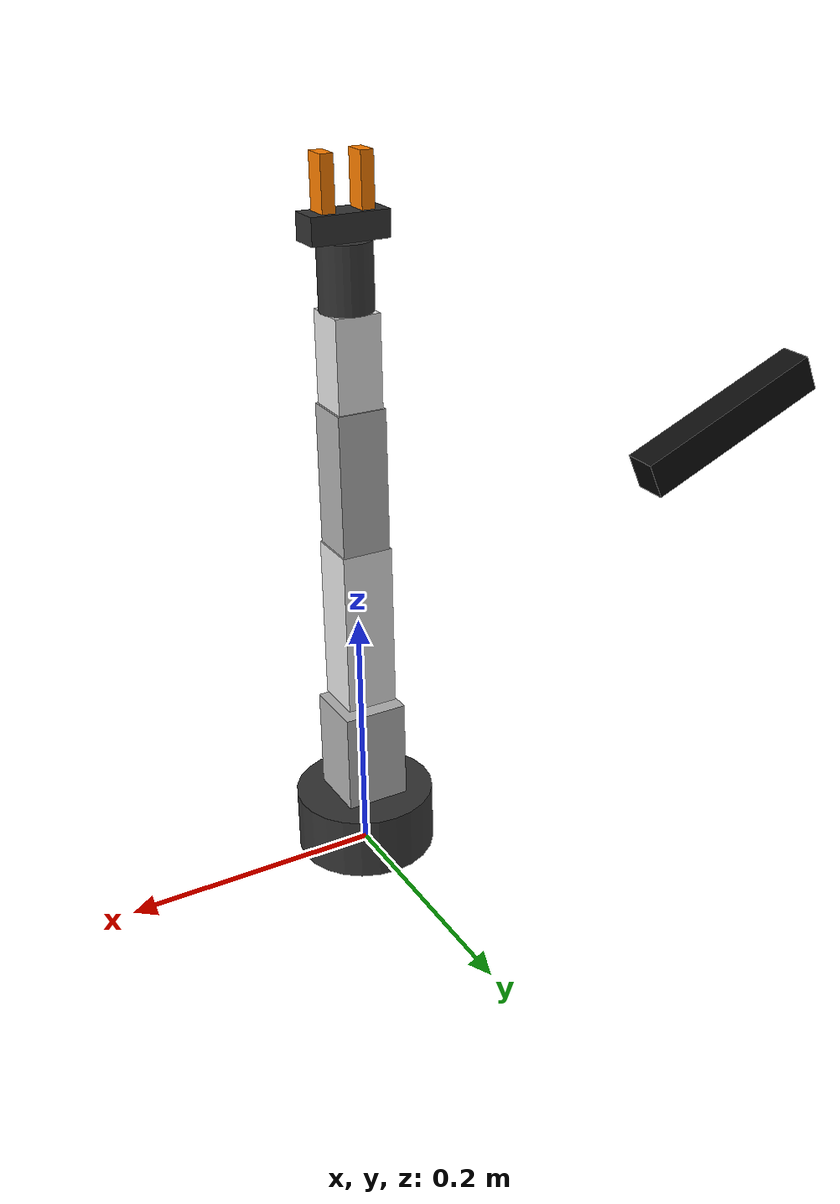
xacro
<?xml version="1.0"?>
<robot xmlns:xacro="http://www.ros.org/wiki/xacro" name="so_arm100">

  <xacro:property name="pi" value="3.14159265"/>

  <!-- Gazebo / ros2_control plugin -->
  <xacro:include filename="$(find so_arm100_description)/urdf/so_arm100.gazebo.xacro"/>
  <xacro:include filename="$(find so_arm100_description)/urdf/so_arm100.ros2_control.xacro"/>

  <!-- ───────── Materials ───────── -->
  <material name="dark_grey">
    <color rgba="0.2 0.2 0.2 1.0"/>
  </material>
  <material name="light_grey">
    <color rgba="0.7 0.7 0.7 1.0"/>
  </material>
  <material name="white">
    <color rgba="0.9 0.9 0.9 1.0"/>
  </material>
  <material name="black">
    <color rgba="0.05 0.05 0.05 1.0"/>
  </material>
  <material name="orange">
    <color rgba="1.0 0.5 0.0 1.0"/>
  </material>

  <!-- ───────── Macro: box inertia ───────── -->
  <xacro:macro name="box_inertia" params="m x y z">
    <inertial>
      <mass value="${m}"/>
      <inertia ixx="${m*(y*y+z*z)/12}" ixy="0" ixz="0"
               iyy="${m*(x*x+z*z)/12}" iyz="0"
               izz="${m*(x*x+y*y)/12}"/>
    </inertial>
  </xacro:macro>

  <!-- ───────── World / base_footprint ───────── -->
  <link name="world"/>

  <joint name="world_to_base" type="fixed">
    <parent link="world"/>
    <child  link="base_link"/>
    <origin xyz="0 0 0" rpy="0 0 0"/>
  </joint>

  <!-- ───────── Base link ───────── -->
  <link name="base_link">
    <visual>
      <origin xyz="0 0 0.025" rpy="0 0 0"/>
      <geometry><cylinder radius="0.055" length="0.05"/></geometry>
      <material name="dark_grey"/>
    </visual>
    <collision>
      <origin xyz="0 0 0.025" rpy="0 0 0"/>
      <geometry><cylinder radius="0.055" length="0.05"/></geometry>
    </collision>
    <xacro:box_inertia m="0.5" x="0.11" y="0.11" z="0.05"/>
  </link>

  <!-- ───────── Joint 1: Base rotation (yaw) ───────── -->
  <joint name="joint1" type="revolute">
    <parent link="base_link"/>
    <child  link="link1"/>
    <origin xyz="0 0 0.05" rpy="0 0 0"/>
    <axis xyz="0 0 1"/>
    <limit lower="${-pi}" upper="${pi}" effort="10" velocity="2.0"/>
    <dynamics damping="0.1" friction="0.05"/>
  </joint>

  <link name="link1">
    <visual>
      <origin xyz="0 0 0.04" rpy="0 0 0"/>
      <geometry><box size="0.05 0.05 0.08"/></geometry>
      <material name="light_grey"/>
    </visual>
    <collision>
      <origin xyz="0 0 0.04" rpy="0 0 0"/>
      <geometry><box size="0.05 0.05 0.08"/></geometry>
    </collision>
    <xacro:box_inertia m="0.2" x="0.05" y="0.05" z="0.08"/>
  </link>

  <!-- ───────── Joint 2: Shoulder pitch ───────── -->
  <joint name="joint2" type="revolute">
    <parent link="link1"/>
    <child  link="link2"/>
    <origin xyz="0 0 0.085" rpy="0 0 0"/>
    <axis xyz="0 1 0"/>
    <limit lower="${-pi/2}" upper="${pi/2}" effort="10" velocity="2.0"/>
    <dynamics damping="0.1" friction="0.05"/>
  </joint>

  <link name="link2">
    <visual>
      <origin xyz="0 0 0.065" rpy="0 0 0"/>
      <geometry><box size="0.04 0.04 0.13"/></geometry>
      <material name="white"/>
    </visual>
    <collision>
      <origin xyz="0 0 0.065" rpy="0 0 0"/>
      <geometry><box size="0.04 0.04 0.13"/></geometry>
    </collision>
    <xacro:box_inertia m="0.18" x="0.04" y="0.04" z="0.13"/>
  </link>

  <!-- ───────── Joint 3: Elbow pitch ───────── -->
  <joint name="joint3" type="revolute">
    <parent link="link2"/>
    <child  link="link3"/>
    <origin xyz="0 0 0.13" rpy="0 0 0"/>
    <axis xyz="0 1 0"/>
    <limit lower="${-pi*2/3}" upper="${pi*2/3}" effort="8" velocity="2.0"/>
    <dynamics damping="0.1" friction="0.05"/>
  </joint>

  <link name="link3">
    <visual>
      <origin xyz="0 0 0.055" rpy="0 0 0"/>
      <geometry><box size="0.038 0.038 0.11"/></geometry>
      <material name="light_grey"/>
    </visual>
    <collision>
      <origin xyz="0 0 0.055" rpy="0 0 0"/>
      <geometry><box size="0.038 0.038 0.11"/></geometry>
    </collision>
    <xacro:box_inertia m="0.14" x="0.038" y="0.038" z="0.11"/>
  </link>

  <!-- ───────── Joint 4: Wrist pitch ───────── -->
  <joint name="joint4" type="revolute">
    <parent link="link3"/>
    <child  link="link4"/>
    <origin xyz="0 0 0.11" rpy="0 0 0"/>
    <axis xyz="0 1 0"/>
    <limit lower="${-pi/2}" upper="${pi/2}" effort="5" velocity="3.0"/>
    <dynamics damping="0.05" friction="0.02"/>
  </joint>

  <link name="link4">
    <visual>
      <origin xyz="0 0 0.035" rpy="0 0 0"/>
      <geometry><box size="0.035 0.035 0.07"/></geometry>
      <material name="white"/>
    </visual>
    <collision>
      <origin xyz="0 0 0.035" rpy="0 0 0"/>
      <geometry><box size="0.035 0.035 0.07"/></geometry>
    </collision>
    <xacro:box_inertia m="0.10" x="0.035" y="0.035" z="0.07"/>
  </link>

  <!-- ───────── Joint 5: Wrist roll ───────── -->
  <joint name="joint5" type="revolute">
    <parent link="link4"/>
    <child  link="link5"/>
    <origin xyz="0 0 0.07" rpy="0 0 0"/>
    <axis xyz="0 0 1"/>
    <limit lower="${-pi}" upper="${pi}" effort="5" velocity="3.0"/>
    <dynamics damping="0.05" friction="0.02"/>
  </joint>

  <link name="link5">
    <visual>
      <origin xyz="0 0 0.025" rpy="0 0 0"/>
      <geometry><cylinder radius="0.020" length="0.05"/></geometry>
      <material name="dark_grey"/>
    </visual>
    <collision>
      <origin xyz="0 0 0.025" rpy="0 0 0"/>
      <geometry><cylinder radius="0.020" length="0.05"/></geometry>
    </collision>
    <xacro:box_inertia m="0.06" x="0.04" y="0.04" z="0.05"/>
  </link>

  <!-- ───────── Gripper base ───────── -->
  <joint name="gripper_base_joint" type="fixed">
    <parent link="link5"/>
    <child  link="gripper_base"/>
    <origin xyz="0 0 0.05" rpy="0 0 0"/>
  </joint>

  <link name="gripper_base">
    <visual>
      <origin xyz="0 0 0.01" rpy="0 0 0"/>
      <geometry><box size="0.06 0.025 0.02"/></geometry>
      <material name="dark_grey"/>
    </visual>
    <collision>
      <origin xyz="0 0 0.01" rpy="0 0 0"/>
      <geometry><box size="0.06 0.025 0.02"/></geometry>
    </collision>
    <xacro:box_inertia m="0.05" x="0.06" y="0.025" z="0.02"/>
  </link>

  <!-- ───────── Gripper finger left ───────── -->
  <joint name="gripper_left_joint" type="prismatic">
    <parent link="gripper_base"/>
    <child  link="gripper_left"/>
    <origin xyz="-0.015 0 0.02" rpy="0 0 0"/>
    <axis xyz="1 0 0"/>
    <limit lower="-0.025" upper="0.0" effort="5" velocity="0.1"/>
    <dynamics damping="0.05" friction="0.01"/>
  </joint>

  <link name="gripper_left">
    <visual>
      <origin xyz="0 0 0.02" rpy="0 0 0"/>
      <geometry><box size="0.01 0.018 0.04"/></geometry>
      <material name="orange"/>
    </visual>
    <collision>
      <origin xyz="0 0 0.02" rpy="0 0 0"/>
      <geometry><box size="0.01 0.018 0.04"/></geometry>
    </collision>
    <xacro:box_inertia m="0.02" x="0.01" y="0.018" z="0.04"/>
  </link>

  <!-- ───────── Gripper finger right (mimic) ───────── -->
  <joint name="gripper_right_joint" type="prismatic">
    <parent link="gripper_base"/>
    <child  link="gripper_right"/>
    <origin xyz="0.015 0 0.02" rpy="0 0 0"/>
    <axis xyz="-1 0 0"/>
    <limit lower="-0.025" upper="0.0" effort="5" velocity="0.1"/>
    <mimic joint="gripper_left_joint" multiplier="1.0" offset="0.0"/>
    <dynamics damping="0.05" friction="0.01"/>
  </joint>

  <link name="gripper_right">
    <visual>
      <origin xyz="0 0 0.02" rpy="0 0 0"/>
      <geometry><box size="0.01 0.018 0.04"/></geometry>
      <material name="orange"/>
    </visual>
    <collision>
      <origin xyz="0 0 0.02" rpy="0 0 0"/>
      <geometry><box size="0.01 0.018 0.04"/></geometry>
    </collision>
    <xacro:box_inertia m="0.02" x="0.01" y="0.018" z="0.04"/>
  </link>

  <!-- ───────── Tool-center point ───────── -->
  <joint name="tcp_joint" type="fixed">
    <parent link="gripper_base"/>
    <child  link="tcp"/>
    <origin xyz="0 0 0.07" rpy="0 0 0"/>
  </joint>

  <link name="tcp"/>

  <!-- ───────── ZED2 Camera mount (fixed to link1 at ~eye height) ───────── -->
  <joint name="camera_mount_joint" type="fixed">
    <parent link="world"/>
    <child  link="zed2_base_link"/>
    <origin xyz="-0.35 0 0.30" rpy="0 0.4 0"/>
  </joint>

  <link name="zed2_base_link">
    <visual>
      <origin xyz="0 0 0" rpy="0 0 0"/>
      <geometry><box size="0.175 0.030 0.033"/></geometry>
      <material name="black"/>
    </visual>
    <collision>
      <origin xyz="0 0 0" rpy="0 0 0"/>
      <geometry><box size="0.175 0.030 0.033"/></geometry>
    </collision>
    <xacro:box_inertia m="0.16" x="0.175" y="0.030" z="0.033"/>
  </link>

  <!-- Left optical frame (main RGB) -->
  <joint name="zed2_left_camera_joint" type="fixed">
    <parent link="zed2_base_link"/>
    <child  link="zed2_left_camera_frame"/>
    <origin xyz="0 0 0" rpy="${-pi/2} 0 ${-pi/2}"/>
  </joint>
  <link name="zed2_left_camera_frame"/>

  <joint name="zed2_left_camera_optical_joint" type="fixed">
    <parent link="zed2_left_camera_frame"/>
    <child  link="zed2_left_camera_optical_frame"/>
    <origin xyz="0 0 0" rpy="0 0 0"/>
  </joint>
  <link name="zed2_left_camera_optical_frame"/>

</robot>
